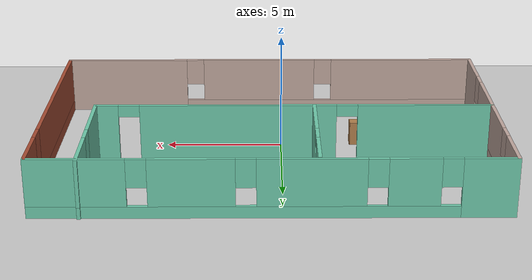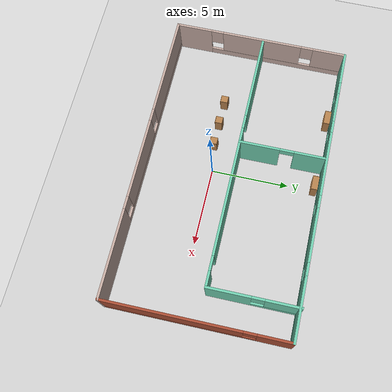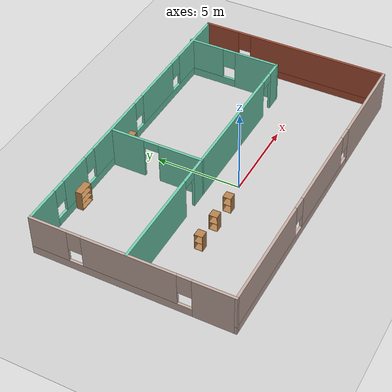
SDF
<sdf version="1.6">
 <world name="default">
  <model name="ground_plane">
   <static>1</static>
   <link name="link">
    <collision name="collision">
     <geometry><plane><normal>0 0 1</normal><size>100 100</size></plane></geometry>
     <surface><friction><ode><mu>100</mu><mu2>50</mu2></ode></friction></surface>
    </collision>
    <visual name="visual">
     <cast_shadows>0</cast_shadows>
     <geometry><plane><normal>0 0 1</normal><size>100 100</size></plane></geometry>
     <material>
      <script><uri>file://media/materials/scripts/gazebo.material</uri><name>Gazebo/Grey</name></script>
     </material>
    </visual>
   </link>
  </model>
  <model name="bookshelf">
   <static>1</static>
   <link name="link">
    <inertial><mass>1</mass></inertial>
    <collision name="back">
     <pose>0 0.005 0.6 0 -0 0</pose>
     <geometry><box><size>0.9 0.01 1.2</size></box></geometry>
    </collision>
    <visual name="visual1">
     <pose>0 0.005 0.6 0 -0 0</pose>
     <geometry><box><size>0.9 0.01 1.2</size></box></geometry>
     <material>
      <script><uri>file://media/materials/scripts/gazebo.material</uri><name>Gazebo/Wood</name></script>
     </material>
    </visual>
    <collision name="left_side">
     <pose>0.45 -0.195 0.6 0 -0 0</pose>
     <geometry><box><size>0.02 0.4 1.2</size></box></geometry>
    </collision>
    <visual name="visual2">
     <pose>0.45 -0.195 0.6 0 -0 0</pose>
     <geometry><box><size>0.02 0.4 1.2</size></box></geometry>
     <material>
      <script><uri>file://media/materials/scripts/gazebo.material</uri><name>Gazebo/Wood</name></script>
     </material>
    </visual>
    <collision name="right_side">
     <pose>-0.45 -0.195 0.6 0 -0 0</pose>
     <geometry><box><size>0.02 0.4 1.2</size></box></geometry>
    </collision>
    <visual name="visual3">
     <pose>-0.45 -0.195 0.6 0 -0 0</pose>
     <geometry><box><size>0.02 0.4 1.2</size></box></geometry>
     <material>
      <script><uri>file://media/materials/scripts/gazebo.material</uri><name>Gazebo/Wood</name></script>
     </material>
    </visual>
    <collision name="bottom">
     <pose>0 -0.195 0.03 0 -0 0</pose>
     <geometry><box><size>0.88 0.4 0.06</size></box></geometry>
    </collision>
    <visual name="visual4">
     <pose>0 -0.195 0.03 0 -0 0</pose>
     <geometry><box><size>0.88 0.4 0.06</size></box></geometry>
     <material>
      <script><uri>file://media/materials/scripts/gazebo.material</uri><name>Gazebo/Wood</name></script>
     </material>
    </visual>
    <collision name="top">
     <pose>0 -0.195 1.19 0 -0 0</pose>
     <geometry><box><size>0.88 0.4 0.02</size></box></geometry>
    </collision>
    <visual name="visual5">
     <pose>0 -0.195 1.19 0 -0 0</pose>
     <geometry><box><size>0.88 0.4 0.02</size></box></geometry>
     <material>
      <script><uri>file://media/materials/scripts/gazebo.material</uri><name>Gazebo/Wood</name></script>
     </material>
    </visual>
    <collision name="low_shelf">
     <pose>0 -0.195 0.43 0 -0 0</pose>
     <geometry><box><size>0.88 0.4 0.02</size></box></geometry>
    </collision>
    <visual name="visual6">
     <pose>0 -0.195 0.43 0 -0 0</pose>
     <geometry><box><size>0.88 0.4 0.02</size></box></geometry>
     <material>
      <script><uri>file://media/materials/scripts/gazebo.material</uri><name>Gazebo/Wood</name></script>
     </material>
    </visual>
    <collision name="high_shelf">
     <pose>0 -0.195 0.8 0 -0 0</pose>
     <geometry><box><size>0.88 0.4 0.02</size></box></geometry>
    </collision>
    <visual name="visual7">
     <pose>0 -0.195 0.8 0 -0 0</pose>
     <geometry><box><size>0.88 0.4 0.02</size></box></geometry>
     <material>
      <script><uri>file://media/materials/scripts/gazebo.material</uri><name>Gazebo/Wood</name></script>
     </material>
    </visual>
   </link>
   <pose>-0.189029 6.86366 0 0 -0 0</pose>
  </model>
  <model name="bookshelf_0">
   <static>1</static>
   <link name="link">
    <inertial><mass>1</mass></inertial>
    <collision name="back">
     <pose>0 0.005 0.6 0 -0 0</pose>
     <geometry><box><size>0.9 0.01 1.2</size></box></geometry>
    </collision>
    <visual name="visual1">
     <pose>0 0.005 0.6 0 -0 0</pose>
     <geometry><box><size>0.9 0.01 1.2</size></box></geometry>
     <material>
      <script><uri>file://media/materials/scripts/gazebo.material</uri><name>Gazebo/Wood</name></script>
     </material>
    </visual>
    <collision name="left_side">
     <pose>0.45 -0.195 0.6 0 -0 0</pose>
     <geometry><box><size>0.02 0.4 1.2</size></box></geometry>
    </collision>
    <visual name="visual2">
     <pose>0.45 -0.195 0.6 0 -0 0</pose>
     <geometry><box><size>0.02 0.4 1.2</size></box></geometry>
     <material>
      <script><uri>file://media/materials/scripts/gazebo.material</uri><name>Gazebo/Wood</name></script>
     </material>
    </visual>
    <collision name="right_side">
     <pose>-0.45 -0.195 0.6 0 -0 0</pose>
     <geometry><box><size>0.02 0.4 1.2</size></box></geometry>
    </collision>
    <visual name="visual3">
     <pose>-0.45 -0.195 0.6 0 -0 0</pose>
     <geometry><box><size>0.02 0.4 1.2</size></box></geometry>
     <material>
      <script><uri>file://media/materials/scripts/gazebo.material</uri><name>Gazebo/Wood</name></script>
     </material>
    </visual>
    <collision name="bottom">
     <pose>0 -0.195 0.03 0 -0 0</pose>
     <geometry><box><size>0.88 0.4 0.06</size></box></geometry>
    </collision>
    <visual name="visual4">
     <pose>0 -0.195 0.03 0 -0 0</pose>
     <geometry><box><size>0.88 0.4 0.06</size></box></geometry>
     <material>
      <script><uri>file://media/materials/scripts/gazebo.material</uri><name>Gazebo/Wood</name></script>
     </material>
    </visual>
    <collision name="top">
     <pose>0 -0.195 1.19 0 -0 0</pose>
     <geometry><box><size>0.88 0.4 0.02</size></box></geometry>
    </collision>
    <visual name="visual5">
     <pose>0 -0.195 1.19 0 -0 0</pose>
     <geometry><box><size>0.88 0.4 0.02</size></box></geometry>
     <material>
      <script><uri>file://media/materials/scripts/gazebo.material</uri><name>Gazebo/Wood</name></script>
     </material>
    </visual>
    <collision name="low_shelf">
     <pose>0 -0.195 0.43 0 -0 0</pose>
     <geometry><box><size>0.88 0.4 0.02</size></box></geometry>
    </collision>
    <visual name="visual6">
     <pose>0 -0.195 0.43 0 -0 0</pose>
     <geometry><box><size>0.88 0.4 0.02</size></box></geometry>
     <material>
      <script><uri>file://media/materials/scripts/gazebo.material</uri><name>Gazebo/Wood</name></script>
     </material>
    </visual>
    <collision name="high_shelf">
     <pose>0 -0.195 0.8 0 -0 0</pose>
     <geometry><box><size>0.88 0.4 0.02</size></box></geometry>
    </collision>
    <visual name="visual7">
     <pose>0 -0.195 0.8 0 -0 0</pose>
     <geometry><box><size>0.88 0.4 0.02</size></box></geometry>
     <material>
      <script><uri>file://media/materials/scripts/gazebo.material</uri><name>Gazebo/Wood</name></script>
     </material>
    </visual>
   </link>
   <pose>-4.88066 6.89065 0 0 -0 0</pose>
  </model>
  <model name="myHouse_0">
   <pose>0.46401 1.38823 0 0 -0 0</pose>
   <link name="Wall_13">
    <pose>-9.425 -0.045494 0 0 -0 1.5708</pose>
    <visual name="Wall_13_Visual_0">
     <pose>-4.55656 0 1.25 0 -0 0</pose>
     <geometry><box><size>2.38689 0.15 2.5</size></box></geometry>
     <material>
      <script><uri>file://media/materials/scripts/gazebo.material</uri><name>Gazebo/Grey</name></script>
      <ambient>0.760784 0.662745 0.627451 1</ambient>
     </material>
    </visual>
    <collision name="Wall_13_Collision_0">
     <geometry><box><size>2.38689 0.15 2.5</size></box></geometry>
     <pose>-4.55656 0 1.25 0 -0 0</pose>
    </collision>
    <visual name="Wall_13_Visual_1">
     <pose>1.19344 0 0.25 0 -0 0</pose>
     <geometry><box><size>9.11311 0.15 0.5</size></box></geometry>
     <material>
      <script><uri>file://media/materials/scripts/gazebo.material</uri><name>Gazebo/Grey</name></script>
      <ambient>0.760784 0.662745 0.627451 1</ambient>
     </material>
    </visual>
    <collision name="Wall_13_Collision_1">
     <geometry><box><size>9.11311 0.15 0.5</size></box></geometry>
     <pose>1.19344 0 0.25 0 -0 0</pose>
    </collision>
    <visual name="Wall_13_Visual_2">
     <pose>0.082545 0 1.5 0 -0 0</pose>
     <geometry><box><size>5.29132 0.15 2</size></box></geometry>
     <material>
      <script><uri>file://media/materials/scripts/gazebo.material</uri><name>Gazebo/Grey</name></script>
      <ambient>0.760784 0.662745 0.627451 1</ambient>
     </material>
    </visual>
    <collision name="Wall_13_Collision_2">
     <geometry><box><size>5.29132 0.15 2</size></box></geometry>
     <pose>0.082545 0 1.5 0 -0 0</pose>
    </collision>
    <visual name="Wall_13_Visual_3">
     <pose>4.6391 0 1.5 0 -0 0</pose>
     <geometry><box><size>2.2218 0.15 2</size></box></geometry>
     <material>
      <script><uri>file://media/materials/scripts/gazebo.material</uri><name>Gazebo/Grey</name></script>
      <ambient>0.760784 0.662745 0.627451 1</ambient>
     </material>
    </visual>
    <collision name="Wall_13_Collision_3">
     <geometry><box><size>2.2218 0.15 2</size></box></geometry>
     <pose>4.6391 0 1.5 0 -0 0</pose>
    </collision>
    <visual name="Wall_13_Visual_4">
     <pose>-2.96311 0 1.9 0 -0 0</pose>
     <geometry><box><size>0.8 0.15 1.2</size></box></geometry>
     <material>
      <script><uri>file://media/materials/scripts/gazebo.material</uri><name>Gazebo/Grey</name></script>
      <ambient>0.760784 0.662745 0.627451 1</ambient>
     </material>
    </visual>
    <collision name="Wall_13_Collision_4">
     <geometry><box><size>0.8 0.15 1.2</size></box></geometry>
     <pose>-2.96311 0 1.9 0 -0 0</pose>
    </collision>
    <visual name="Wall_13_Visual_5">
     <pose>3.1282 0 1.9 0 -0 0</pose>
     <geometry><box><size>0.8 0.15 1.2</size></box></geometry>
     <material>
      <script><uri>file://media/materials/scripts/gazebo.material</uri><name>Gazebo/Grey</name></script>
      <ambient>0.760784 0.662745 0.627451 1</ambient>
     </material>
    </visual>
    <collision name="Wall_13_Collision_5">
     <geometry><box><size>0.8 0.15 1.2</size></box></geometry>
     <pose>3.1282 0 1.9 0 -0 0</pose>
    </collision>
   </link>
   <link name="Wall_14">
    <pose>-1e-06 5.62951 0 0 -0 0</pose>
    <visual name="Wall_14_Visual_0">
     <pose>-8.41086 0 1.25 0 -0 0</pose>
     <geometry><box><size>2.17828 0.15 2.5</size></box></geometry>
     <material>
      <script><uri>file://media/materials/scripts/gazebo.material</uri><name>Gazebo/Grey</name></script>
      <ambient>0.435294 0.796078 0.67451 1</ambient>
     </material>
    </visual>
    <collision name="Wall_14_Collision_0">
     <geometry><box><size>2.17828 0.15 2.5</size></box></geometry>
     <pose>-8.41086 0 1.25 0 -0 0</pose>
    </collision>
    <visual name="Wall_14_Visual_1">
     <pose>1.08914 0 0.25 0 -0 0</pose>
     <geometry><box><size>16.8217 0.15 0.5</size></box></geometry>
     <material>
      <script><uri>file://media/materials/scripts/gazebo.material</uri><name>Gazebo/Grey</name></script>
      <ambient>0.435294 0.796078 0.67451 1</ambient>
     </material>
    </visual>
    <collision name="Wall_14_Collision_1">
     <geometry><box><size>16.8217 0.15 0.5</size></box></geometry>
     <pose>1.08914 0 0.25 0 -0 0</pose>
    </collision>
    <visual name="Wall_14_Visual_2">
     <pose>-5.50319 0 1.5 0 -0 0</pose>
     <geometry><box><size>2.03705 0.15 2</size></box></geometry>
     <material>
      <script><uri>file://media/materials/scripts/gazebo.material</uri><name>Gazebo/Grey</name></script>
      <ambient>0.435294 0.796078 0.67451 1</ambient>
     </material>
    </visual>
    <collision name="Wall_14_Collision_2">
     <geometry><box><size>2.03705 0.15 2</size></box></geometry>
     <pose>-5.50319 0 1.5 0 -0 0</pose>
    </collision>
    <visual name="Wall_14_Visual_3">
     <pose>-1.5501 0 1.5 0 -0 0</pose>
     <geometry><box><size>4.26914 0.15 2</size></box></geometry>
     <material>
      <script><uri>file://media/materials/scripts/gazebo.material</uri><name>Gazebo/Grey</name></script>
      <ambient>0.435294 0.796078 0.67451 1</ambient>
     </material>
    </visual>
    <collision name="Wall_14_Collision_3">
     <geometry><box><size>4.26914 0.15 2</size></box></geometry>
     <pose>-1.5501 0 1.5 0 -0 0</pose>
    </collision>
    <visual name="Wall_14_Visual_4">
     <pose>3.08097 0 1.5 0 -0 0</pose>
     <geometry><box><size>3.393 0.15 2</size></box></geometry>
     <material>
      <script><uri>file://media/materials/scripts/gazebo.material</uri><name>Gazebo/Grey</name></script>
      <ambient>0.435294 0.796078 0.67451 1</ambient>
     </material>
    </visual>
    <collision name="Wall_14_Collision_4">
     <geometry><box><size>3.393 0.15 2</size></box></geometry>
     <pose>3.08097 0 1.5 0 -0 0</pose>
    </collision>
    <visual name="Wall_14_Visual_5">
     <pose>7.53873 0 1.5 0 -0 0</pose>
     <geometry><box><size>3.92253 0.15 2</size></box></geometry>
     <material>
      <script><uri>file://media/materials/scripts/gazebo.material</uri><name>Gazebo/Grey</name></script>
      <ambient>0.435294 0.796078 0.67451 1</ambient>
     </material>
    </visual>
    <collision name="Wall_14_Collision_5">
     <geometry><box><size>3.92253 0.15 2</size></box></geometry>
     <pose>7.53873 0 1.5 0 -0 0</pose>
    </collision>
    <visual name="Wall_14_Visual_6">
     <pose>-6.92172 0 1.9 0 -0 0</pose>
     <geometry><box><size>0.8 0.15 1.2</size></box></geometry>
     <material>
      <script><uri>file://media/materials/scripts/gazebo.material</uri><name>Gazebo/Grey</name></script>
      <ambient>0.435294 0.796078 0.67451 1</ambient>
     </material>
    </visual>
    <collision name="Wall_14_Collision_6">
     <geometry><box><size>0.8 0.15 1.2</size></box></geometry>
     <pose>-6.92172 0 1.9 0 -0 0</pose>
    </collision>
    <visual name="Wall_14_Visual_7">
     <pose>-4.08467 0 1.9 0 -0 0</pose>
     <geometry><box><size>0.8 0.15 1.2</size></box></geometry>
     <material>
      <script><uri>file://media/materials/scripts/gazebo.material</uri><name>Gazebo/Grey</name></script>
      <ambient>0.435294 0.796078 0.67451 1</ambient>
     </material>
    </visual>
    <collision name="Wall_14_Collision_7">
     <geometry><box><size>0.8 0.15 1.2</size></box></geometry>
     <pose>-4.08467 0 1.9 0 -0 0</pose>
    </collision>
    <visual name="Wall_14_Visual_8">
     <pose>0.984475 0 1.9 0 -0 0</pose>
     <geometry><box><size>0.8 0.15 1.2</size></box></geometry>
     <material>
      <script><uri>file://media/materials/scripts/gazebo.material</uri><name>Gazebo/Grey</name></script>
      <ambient>0.435294 0.796078 0.67451 1</ambient>
     </material>
    </visual>
    <collision name="Wall_14_Collision_8">
     <geometry><box><size>0.8 0.15 1.2</size></box></geometry>
     <pose>0.984475 0 1.9 0 -0 0</pose>
    </collision>
    <visual name="Wall_14_Visual_9">
     <pose>5.17747 0 1.9 0 -0 0</pose>
     <geometry><box><size>0.8 0.15 1.2</size></box></geometry>
     <material>
      <script><uri>file://media/materials/scripts/gazebo.material</uri><name>Gazebo/Grey</name></script>
      <ambient>0.435294 0.796078 0.67451 1</ambient>
     </material>
    </visual>
    <collision name="Wall_14_Collision_9">
     <geometry><box><size>0.8 0.15 1.2</size></box></geometry>
     <pose>5.17747 0 1.9 0 -0 0</pose>
    </collision>
   </link>
   <link name="Wall_15">
    <pose>9.425 -0.045494 0 0 0 -1.5708</pose>
    <visual name="Wall_15_Visual_0">
     <pose>-4.65996 0 1.25 0 -0 0</pose>
     <geometry><box><size>2.18007 0.15 2.5</size></box></geometry>
     <material>
      <script><uri>file://media/materials/scripts/gazebo.material</uri><name>Gazebo/Bricks</name></script>
      <ambient>0.760784 0.662745 0.627451 1</ambient>
     </material>
    </visual>
    <collision name="Wall_15_Collision_0">
     <geometry><box><size>2.18007 0.15 2.5</size></box></geometry>
     <pose>-4.65996 0 1.25 0 -0 0</pose>
    </collision>
    <visual name="Wall_15_Visual_1">
     <pose>1.09004 0 0.25 0 -0 0</pose>
     <geometry><box><size>9.31992 0.15 0.5</size></box></geometry>
     <material>
      <script><uri>file://media/materials/scripts/gazebo.material</uri><name>Gazebo/Bricks</name></script>
      <ambient>0.760784 0.662745 0.627451 1</ambient>
     </material>
    </visual>
    <collision name="Wall_15_Collision_1">
     <geometry><box><size>9.31992 0.15 0.5</size></box></geometry>
     <pose>1.09004 0 0.25 0 -0 0</pose>
    </collision>
    <visual name="Wall_15_Visual_2">
     <pose>1.49004 0 1.5 0 -0 0</pose>
     <geometry><box><size>8.51993 0.15 2</size></box></geometry>
     <material>
      <script><uri>file://media/materials/scripts/gazebo.material</uri><name>Gazebo/Bricks</name></script>
      <ambient>0.760784 0.662745 0.627451 1</ambient>
     </material>
    </visual>
    <collision name="Wall_15_Collision_2">
     <geometry><box><size>8.51993 0.15 2</size></box></geometry>
     <pose>1.49004 0 1.5 0 -0 0</pose>
    </collision>
    <visual name="Wall_15_Visual_3">
     <pose>-3.16993 0 1.9 0 -0 0</pose>
     <geometry><box><size>0.8 0.15 1.2</size></box></geometry>
     <material>
      <script><uri>file://media/materials/scripts/gazebo.material</uri><name>Gazebo/Bricks</name></script>
      <ambient>0.760784 0.662745 0.627451 1</ambient>
     </material>
    </visual>
    <collision name="Wall_15_Collision_3">
     <geometry><box><size>0.8 0.15 1.2</size></box></geometry>
     <pose>-3.16993 0 1.9 0 -0 0</pose>
    </collision>
   </link>
   <link name="Wall_16">
    <pose>-1e-06 -5.72049 0 0 -0 3.14159</pose>
    <visual name="Wall_16_Visual_0">
     <pose>-6.71474 0 1.25 0 -0 0</pose>
     <geometry><box><size>5.57052 0.15 2.5</size></box></geometry>
     <material>
      <script><uri>file://media/materials/scripts/gazebo.material</uri><name>Gazebo/Grey</name></script>
      <ambient>0.760784 0.662745 0.627451 1</ambient>
     </material>
    </visual>
    <collision name="Wall_16_Collision_0">
     <geometry><box><size>5.57052 0.15 2.5</size></box></geometry>
     <pose>-6.71474 0 1.25 0 -0 0</pose>
    </collision>
    <visual name="Wall_16_Visual_1">
     <pose>2.78526 0 0.25 0 -0 0</pose>
     <geometry><box><size>13.4295 0.15 0.5</size></box></geometry>
     <material>
      <script><uri>file://media/materials/scripts/gazebo.material</uri><name>Gazebo/Grey</name></script>
      <ambient>0.760784 0.662745 0.627451 1</ambient>
     </material>
    </visual>
    <collision name="Wall_16_Collision_1">
     <geometry><box><size>13.4295 0.15 0.5</size></box></geometry>
     <pose>2.78526 0 0.25 0 -0 0</pose>
    </collision>
    <visual name="Wall_16_Visual_2">
     <pose>-0.525541 0 1.5 0 -0 0</pose>
     <geometry><box><size>5.20787 0.15 2</size></box></geometry>
     <material>
      <script><uri>file://media/materials/scripts/gazebo.material</uri><name>Gazebo/Grey</name></script>
      <ambient>0.760784 0.662745 0.627451 1</ambient>
     </material>
    </visual>
    <collision name="Wall_16_Collision_2">
     <geometry><box><size>5.20787 0.15 2</size></box></geometry>
     <pose>-0.525541 0 1.5 0 -0 0</pose>
    </collision>
    <visual name="Wall_16_Visual_3">
     <pose>6.1892 0 1.5 0 -0 0</pose>
     <geometry><box><size>6.6216 0.15 2</size></box></geometry>
     <material>
      <script><uri>file://media/materials/scripts/gazebo.material</uri><name>Gazebo/Grey</name></script>
      <ambient>0.760784 0.662745 0.627451 1</ambient>
     </material>
    </visual>
    <collision name="Wall_16_Collision_3">
     <geometry><box><size>6.6216 0.15 2</size></box></geometry>
     <pose>6.1892 0 1.5 0 -0 0</pose>
    </collision>
    <visual name="Wall_16_Visual_4">
     <pose>-3.52948 0 1.9 0 -0 0</pose>
     <geometry><box><size>0.8 0.15 1.2</size></box></geometry>
     <material>
      <script><uri>file://media/materials/scripts/gazebo.material</uri><name>Gazebo/Grey</name></script>
      <ambient>0.760784 0.662745 0.627451 1</ambient>
     </material>
    </visual>
    <collision name="Wall_16_Collision_4">
     <geometry><box><size>0.8 0.15 1.2</size></box></geometry>
     <pose>-3.52948 0 1.9 0 -0 0</pose>
    </collision>
    <visual name="Wall_16_Visual_5">
     <pose>2.4784 0 1.9 0 -0 0</pose>
     <geometry><box><size>0.8 0.15 1.2</size></box></geometry>
     <material>
      <script><uri>file://media/materials/scripts/gazebo.material</uri><name>Gazebo/Grey</name></script>
      <ambient>0.760784 0.662745 0.627451 1</ambient>
     </material>
    </visual>
    <collision name="Wall_16_Collision_5">
     <geometry><box><size>0.8 0.15 1.2</size></box></geometry>
     <pose>2.4784 0 1.9 0 -0 0</pose>
    </collision>
   </link>
   <link name="Wall_18">
    <pose>-0.97914 0.120494 0 0 -0 0</pose>
    <visual name="Wall_18_Visual_0">
     <pose>-5.61055 0 1.25 0 -0 0</pose>
     <geometry><box><size>5.7789 0.15 2.5</size></box></geometry>
     <material>
      <script><uri>file://media/materials/scripts/gazebo.material</uri><name>Gazebo/Grey</name></script>
      <ambient>0.435294 0.796078 0.67451 1</ambient>
     </material>
    </visual>
    <collision name="Wall_18_Collision_0">
     <geometry><box><size>5.7789 0.15 2.5</size></box></geometry>
     <pose>-5.61055 0 1.25 0 -0 0</pose>
    </collision>
    <visual name="Wall_18_Visual_1">
     <pose>2.3704 0 1.25 0 -0 0</pose>
     <geometry><box><size>8.383 0.15 2.5</size></box></geometry>
     <material>
      <script><uri>file://media/materials/scripts/gazebo.material</uri><name>Gazebo/Grey</name></script>
      <ambient>0.435294 0.796078 0.67451 1</ambient>
     </material>
    </visual>
    <collision name="Wall_18_Collision_1">
     <geometry><box><size>8.383 0.15 2.5</size></box></geometry>
     <pose>2.3704 0 1.25 0 -0 0</pose>
    </collision>
    <visual name="Wall_18_Visual_2">
     <pose>7.98095 0 1.25 0 -0 0</pose>
     <geometry><box><size>1.0381 0.15 2.5</size></box></geometry>
     <material>
      <script><uri>file://media/materials/scripts/gazebo.material</uri><name>Gazebo/Grey</name></script>
      <ambient>0.435294 0.796078 0.67451 1</ambient>
     </material>
    </visual>
    <collision name="Wall_18_Collision_2">
     <geometry><box><size>1.0381 0.15 2.5</size></box></geometry>
     <pose>7.98095 0 1.25 0 -0 0</pose>
    </collision>
    <visual name="Wall_18_Visual_3">
     <pose>-2.2711 0 2.25 0 -0 0</pose>
     <geometry><box><size>0.9 0.15 0.5</size></box></geometry>
     <material>
      <script><uri>file://media/materials/scripts/gazebo.material</uri><name>Gazebo/Grey</name></script>
      <ambient>0.435294 0.796078 0.67451 1</ambient>
     </material>
    </visual>
    <collision name="Wall_18_Collision_3">
     <geometry><box><size>0.9 0.15 0.5</size></box></geometry>
     <pose>-2.2711 0 2.25 0 -0 0</pose>
    </collision>
    <visual name="Wall_18_Visual_4">
     <pose>7.0119 0 2.25 0 -0 0</pose>
     <geometry><box><size>0.9 0.15 0.5</size></box></geometry>
     <material>
      <script><uri>file://media/materials/scripts/gazebo.material</uri><name>Gazebo/Grey</name></script>
      <ambient>0.435294 0.796078 0.67451 1</ambient>
     </material>
    </visual>
    <collision name="Wall_18_Collision_4">
     <geometry><box><size>0.9 0.15 0.5</size></box></geometry>
     <pose>7.0119 0 2.25 0 -0 0</pose>
    </collision>
   </link>
   <link name="Wall_19">
    <pose>7.44586 2.92049 0 0 -0 1.5708</pose>
    <visual name="Wall_19_Visual_0">
     <pose>-1.50424 0 1.25 0 -0 0</pose>
     <geometry><box><size>2.74152 0.15 2.5</size></box></geometry>
     <material>
      <script><uri>file://media/materials/scripts/gazebo.material</uri><name>Gazebo/Grey</name></script>
      <ambient>0.435294 0.796078 0.67451 1</ambient>
     </material>
    </visual>
    <collision name="Wall_19_Collision_0">
     <geometry><box><size>2.74152 0.15 2.5</size></box></geometry>
     <pose>-1.50424 0 1.25 0 -0 0</pose>
    </collision>
    <visual name="Wall_19_Visual_1">
     <pose>1.37076 0 0.25 0 -0 0</pose>
     <geometry><box><size>3.00848 0.15 0.5</size></box></geometry>
     <material>
      <script><uri>file://media/materials/scripts/gazebo.material</uri><name>Gazebo/Grey</name></script>
      <ambient>0.435294 0.796078 0.67451 1</ambient>
     </material>
    </visual>
    <collision name="Wall_19_Collision_1">
     <geometry><box><size>3.00848 0.15 0.5</size></box></geometry>
     <pose>1.37076 0 0.25 0 -0 0</pose>
    </collision>
    <visual name="Wall_19_Visual_2">
     <pose>1.77076 0 1.5 0 -0 0</pose>
     <geometry><box><size>2.20848 0.15 2</size></box></geometry>
     <material>
      <script><uri>file://media/materials/scripts/gazebo.material</uri><name>Gazebo/Grey</name></script>
      <ambient>0.435294 0.796078 0.67451 1</ambient>
     </material>
    </visual>
    <collision name="Wall_19_Collision_2">
     <geometry><box><size>2.20848 0.15 2</size></box></geometry>
     <pose>1.77076 0 1.5 0 -0 0</pose>
    </collision>
    <visual name="Wall_19_Visual_3">
     <pose>0.266519 0 1.9 0 -0 0</pose>
     <geometry><box><size>0.8 0.15 1.2</size></box></geometry>
     <material>
      <script><uri>file://media/materials/scripts/gazebo.material</uri><name>Gazebo/Grey</name></script>
      <ambient>0.435294 0.796078 0.67451 1</ambient>
     </material>
    </visual>
    <collision name="Wall_19_Collision_3">
     <geometry><box><size>0.8 0.15 1.2</size></box></geometry>
     <pose>0.266519 0 1.9 0 -0 0</pose>
    </collision>
   </link>
   <link name="Wall_21">
    <pose>-1.85258 2.79549 0 0 -0 1.5708</pose>
    <visual name="Wall_21_Visual_0">
     <pose>-1.43553 0 1.25 0 -0 0</pose>
     <geometry><box><size>2.62894 0.15 2.5</size></box></geometry>
     <material>
      <script><uri>file://media/materials/scripts/gazebo.material</uri><name>Gazebo/Grey</name></script>
      <ambient>0.435294 0.796078 0.67451 1</ambient>
     </material>
    </visual>
    <collision name="Wall_21_Collision_0">
     <geometry><box><size>2.62894 0.15 2.5</size></box></geometry>
     <pose>-1.43553 0 1.25 0 -0 0</pose>
    </collision>
    <visual name="Wall_21_Visual_1">
     <pose>1.76447 0 1.25 0 -0 0</pose>
     <geometry><box><size>1.97106 0.15 2.5</size></box></geometry>
     <material>
      <script><uri>file://media/materials/scripts/gazebo.material</uri><name>Gazebo/Grey</name></script>
      <ambient>0.435294 0.796078 0.67451 1</ambient>
     </material>
    </visual>
    <collision name="Wall_21_Collision_1">
     <geometry><box><size>1.97106 0.15 2.5</size></box></geometry>
     <pose>1.76447 0 1.25 0 -0 0</pose>
    </collision>
    <visual name="Wall_21_Visual_2">
     <pose>0.328937 0 2.25 0 -0 0</pose>
     <geometry><box><size>0.9 0.15 0.5</size></box></geometry>
     <material>
      <script><uri>file://media/materials/scripts/gazebo.material</uri><name>Gazebo/Grey</name></script>
      <ambient>0.435294 0.796078 0.67451 1</ambient>
     </material>
    </visual>
    <collision name="Wall_21_Collision_2">
     <geometry><box><size>0.9 0.15 0.5</size></box></geometry>
     <pose>0.328937 0 2.25 0 -0 0</pose>
    </collision>
   </link>
   <static>1</static>
  </model>
  <model name="cabinet_3">
   <static>1</static>
   <link name="cabinet_bottom_plate">
    <inertial>
     <pose>0 0 -1 0 -0 0</pose>
     <inertia><ixx>2.05</ixx><ixy>0</ixy><ixz>0</ixz><iyy>2.05</iyy><iyz>0</iyz><izz>2.05</izz></inertia>
     <mass>25</mass>
    </inertial>
    <collision name="cabinet_bottom_plate_geom">
     <pose>0 0 0.01 0 -0 0</pose>
     <geometry><box><size>0.45 0.45 0.02</size></box></geometry>
    </collision>
    <visual name="cabinet_bottom_plate_geom_visual">
     <pose>0 0 0.01 0 -0 0</pose>
     <geometry><box><size>0.45 0.45 0.02</size></box></geometry>
     <material>
      <script><uri>file://media/materials/scripts/gazebo.material</uri><name>Gazebo/Wood</name></script>
     </material>
    </visual>
    <collision name="cabinet_bottom_plate_geom_cabinet_back_plate">
     <pose>0.235 0 0.51 0 -0 0</pose>
     <geometry><box><size>0.02 0.45 1.02</size></box></geometry>
    </collision>
    <visual name="cabinet_bottom_plate_geom_cabinet_back_plate_visual">
     <pose>0.235 0 0.51 0 -0 0</pose>
     <geometry><box><size>0.02 0.45 1.02</size></box></geometry>
     <material>
      <script><uri>file://media/materials/scripts/gazebo.material</uri><name>Gazebo/Wood</name></script>
     </material>
    </visual>
    <collision name="cabinet_bottom_plate_geom_cabinet_left_plate">
     <pose>0 0.235 0.51 0 -0 0</pose>
     <geometry><box><size>0.45 0.02 1.02</size></box></geometry>
    </collision>
    <visual name="cabinet_bottom_plate_geom_cabinet_left_plate_visual">
     <pose>0 0.235 0.51 0 -0 0</pose>
     <geometry><box><size>0.45 0.02 1.02</size></box></geometry>
     <material>
      <script><uri>file://media/materials/scripts/gazebo.material</uri><name>Gazebo/Wood</name></script>
     </material>
    </visual>
    <collision name="cabinet_bottom_plate_geom_cabinet_middle_plate">
     <pose>0 0 0.51 0 -0 0</pose>
     <geometry><box><size>0.45 0.45 0.02</size></box></geometry>
    </collision>
    <visual name="cabinet_bottom_plate_geom_cabinet_middle_plate_visual">
     <pose>0 0 0.51 0 -0 0</pose>
     <geometry><box><size>0.45 0.45 0.02</size></box></geometry>
     <material>
      <script><uri>file://media/materials/scripts/gazebo.material</uri><name>Gazebo/Wood</name></script>
     </material>
    </visual>
    <collision name="cabinet_bottom_plate_geom_cabinet_right_plate">
     <pose>0 -0.235 0.51 0 -0 0</pose>
     <geometry><box><size>0.45 0.02 1.02</size></box></geometry>
    </collision>
    <visual name="cabinet_bottom_plate_geom_cabinet_right_plate_visual">
     <pose>0 -0.235 0.51 0 -0 0</pose>
     <geometry><box><size>0.45 0.02 1.02</size></box></geometry>
     <material>
      <script><uri>file://media/materials/scripts/gazebo.material</uri><name>Gazebo/Wood</name></script>
     </material>
    </visual>
    <collision name="cabinet_bottom_plate_geom_cabinet_top_plate">
     <pose>0 0 1.01 0 -0 0</pose>
     <geometry><box><size>0.45 0.45 0.02</size></box></geometry>
    </collision>
    <visual name="cabinet_bottom_plate_geom_cabinet_top_plate_visual">
     <pose>0 0 1.01 0 -0 0</pose>
     <geometry><box><size>0.45 0.45 0.02</size></box></geometry>
     <material>
      <script><uri>file://media/materials/scripts/gazebo.material</uri><name>Gazebo/Wood</name></script>
     </material>
    </visual>
   </link>
   <pose>-4.85273 -0.245282 0 0 -0 0</pose>
  </model>
  <model name="cabinet_4">
   <static>1</static>
   <link name="cabinet_bottom_plate">
    <inertial>
     <pose>0 0 -1 0 -0 0</pose>
     <inertia><ixx>2.05</ixx><ixy>0</ixy><ixz>0</ixz><iyy>2.05</iyy><iyz>0</iyz><izz>2.05</izz></inertia>
     <mass>25</mass>
    </inertial>
    <collision name="cabinet_bottom_plate_geom">
     <pose>0 0 0.01 0 -0 0</pose>
     <geometry><box><size>0.45 0.45 0.02</size></box></geometry>
    </collision>
    <visual name="cabinet_bottom_plate_geom_visual">
     <pose>0 0 0.01 0 -0 0</pose>
     <geometry><box><size>0.45 0.45 0.02</size></box></geometry>
     <material>
      <script><uri>file://media/materials/scripts/gazebo.material</uri><name>Gazebo/Wood</name></script>
     </material>
    </visual>
    <collision name="cabinet_bottom_plate_geom_cabinet_back_plate">
     <pose>0.235 0 0.51 0 -0 0</pose>
     <geometry><box><size>0.02 0.45 1.02</size></box></geometry>
    </collision>
    <visual name="cabinet_bottom_plate_geom_cabinet_back_plate_visual">
     <pose>0.235 0 0.51 0 -0 0</pose>
     <geometry><box><size>0.02 0.45 1.02</size></box></geometry>
     <material>
      <script><uri>file://media/materials/scripts/gazebo.material</uri><name>Gazebo/Wood</name></script>
     </material>
    </visual>
    <collision name="cabinet_bottom_plate_geom_cabinet_left_plate">
     <pose>0 0.235 0.51 0 -0 0</pose>
     <geometry><box><size>0.45 0.02 1.02</size></box></geometry>
    </collision>
    <visual name="cabinet_bottom_plate_geom_cabinet_left_plate_visual">
     <pose>0 0.235 0.51 0 -0 0</pose>
     <geometry><box><size>0.45 0.02 1.02</size></box></geometry>
     <material>
      <script><uri>file://media/materials/scripts/gazebo.material</uri><name>Gazebo/Wood</name></script>
     </material>
    </visual>
    <collision name="cabinet_bottom_plate_geom_cabinet_middle_plate">
     <pose>0 0 0.51 0 -0 0</pose>
     <geometry><box><size>0.45 0.45 0.02</size></box></geometry>
    </collision>
    <visual name="cabinet_bottom_plate_geom_cabinet_middle_plate_visual">
     <pose>0 0 0.51 0 -0 0</pose>
     <geometry><box><size>0.45 0.45 0.02</size></box></geometry>
     <material>
      <script><uri>file://media/materials/scripts/gazebo.material</uri><name>Gazebo/Wood</name></script>
     </material>
    </visual>
    <collision name="cabinet_bottom_plate_geom_cabinet_right_plate">
     <pose>0 -0.235 0.51 0 -0 0</pose>
     <geometry><box><size>0.45 0.02 1.02</size></box></geometry>
    </collision>
    <visual name="cabinet_bottom_plate_geom_cabinet_right_plate_visual">
     <pose>0 -0.235 0.51 0 -0 0</pose>
     <geometry><box><size>0.45 0.02 1.02</size></box></geometry>
     <material>
      <script><uri>file://media/materials/scripts/gazebo.material</uri><name>Gazebo/Wood</name></script>
     </material>
    </visual>
    <collision name="cabinet_bottom_plate_geom_cabinet_top_plate">
     <pose>0 0 1.01 0 -0 0</pose>
     <geometry><box><size>0.45 0.45 0.02</size></box></geometry>
    </collision>
    <visual name="cabinet_bottom_plate_geom_cabinet_top_plate_visual">
     <pose>0 0 1.01 0 -0 0</pose>
     <geometry><box><size>0.45 0.45 0.02</size></box></geometry>
     <material>
      <script><uri>file://media/materials/scripts/gazebo.material</uri><name>Gazebo/Wood</name></script>
     </material>
    </visual>
   </link>
   <pose>-3.2761 -0.260522 0 0 -0 0</pose>
  </model>
  <model name="cabinet_5">
   <static>1</static>
   <link name="cabinet_bottom_plate">
    <inertial>
     <pose>0 0 -1 0 -0 0</pose>
     <inertia><ixx>2.05</ixx><ixy>0</ixy><ixz>0</ixz><iyy>2.05</iyy><iyz>0</iyz><izz>2.05</izz></inertia>
     <mass>25</mass>
    </inertial>
    <collision name="cabinet_bottom_plate_geom">
     <pose>0 0 0.01 0 -0 0</pose>
     <geometry><box><size>0.45 0.45 0.02</size></box></geometry>
    </collision>
    <visual name="cabinet_bottom_plate_geom_visual">
     <pose>0 0 0.01 0 -0 0</pose>
     <geometry><box><size>0.45 0.45 0.02</size></box></geometry>
     <material>
      <script><uri>file://media/materials/scripts/gazebo.material</uri><name>Gazebo/Wood</name></script>
     </material>
    </visual>
    <collision name="cabinet_bottom_plate_geom_cabinet_back_plate">
     <pose>0.235 0 0.51 0 -0 0</pose>
     <geometry><box><size>0.02 0.45 1.02</size></box></geometry>
    </collision>
    <visual name="cabinet_bottom_plate_geom_cabinet_back_plate_visual">
     <pose>0.235 0 0.51 0 -0 0</pose>
     <geometry><box><size>0.02 0.45 1.02</size></box></geometry>
     <material>
      <script><uri>file://media/materials/scripts/gazebo.material</uri><name>Gazebo/Wood</name></script>
     </material>
    </visual>
    <collision name="cabinet_bottom_plate_geom_cabinet_left_plate">
     <pose>0 0.235 0.51 0 -0 0</pose>
     <geometry><box><size>0.45 0.02 1.02</size></box></geometry>
    </collision>
    <visual name="cabinet_bottom_plate_geom_cabinet_left_plate_visual">
     <pose>0 0.235 0.51 0 -0 0</pose>
     <geometry><box><size>0.45 0.02 1.02</size></box></geometry>
     <material>
      <script><uri>file://media/materials/scripts/gazebo.material</uri><name>Gazebo/Wood</name></script>
     </material>
    </visual>
    <collision name="cabinet_bottom_plate_geom_cabinet_middle_plate">
     <pose>0 0 0.51 0 -0 0</pose>
     <geometry><box><size>0.45 0.45 0.02</size></box></geometry>
    </collision>
    <visual name="cabinet_bottom_plate_geom_cabinet_middle_plate_visual">
     <pose>0 0 0.51 0 -0 0</pose>
     <geometry><box><size>0.45 0.45 0.02</size></box></geometry>
     <material>
      <script><uri>file://media/materials/scripts/gazebo.material</uri><name>Gazebo/Wood</name></script>
     </material>
    </visual>
    <collision name="cabinet_bottom_plate_geom_cabinet_right_plate">
     <pose>0 -0.235 0.51 0 -0 0</pose>
     <geometry><box><size>0.45 0.02 1.02</size></box></geometry>
    </collision>
    <visual name="cabinet_bottom_plate_geom_cabinet_right_plate_visual">
     <pose>0 -0.235 0.51 0 -0 0</pose>
     <geometry><box><size>0.45 0.02 1.02</size></box></geometry>
     <material>
      <script><uri>file://media/materials/scripts/gazebo.material</uri><name>Gazebo/Wood</name></script>
     </material>
    </visual>
    <collision name="cabinet_bottom_plate_geom_cabinet_top_plate">
     <pose>0 0 1.01 0 -0 0</pose>
     <geometry><box><size>0.45 0.45 0.02</size></box></geometry>
    </collision>
    <visual name="cabinet_bottom_plate_geom_cabinet_top_plate_visual">
     <pose>0 0 1.01 0 -0 0</pose>
     <geometry><box><size>0.45 0.45 0.02</size></box></geometry>
     <material>
      <script><uri>file://media/materials/scripts/gazebo.material</uri><name>Gazebo/Wood</name></script>
     </material>
    </visual>
   </link>
   <pose>-1.75015 -0.272545 0 0 -0 0</pose>
  </model>
 </world>
</sdf>
